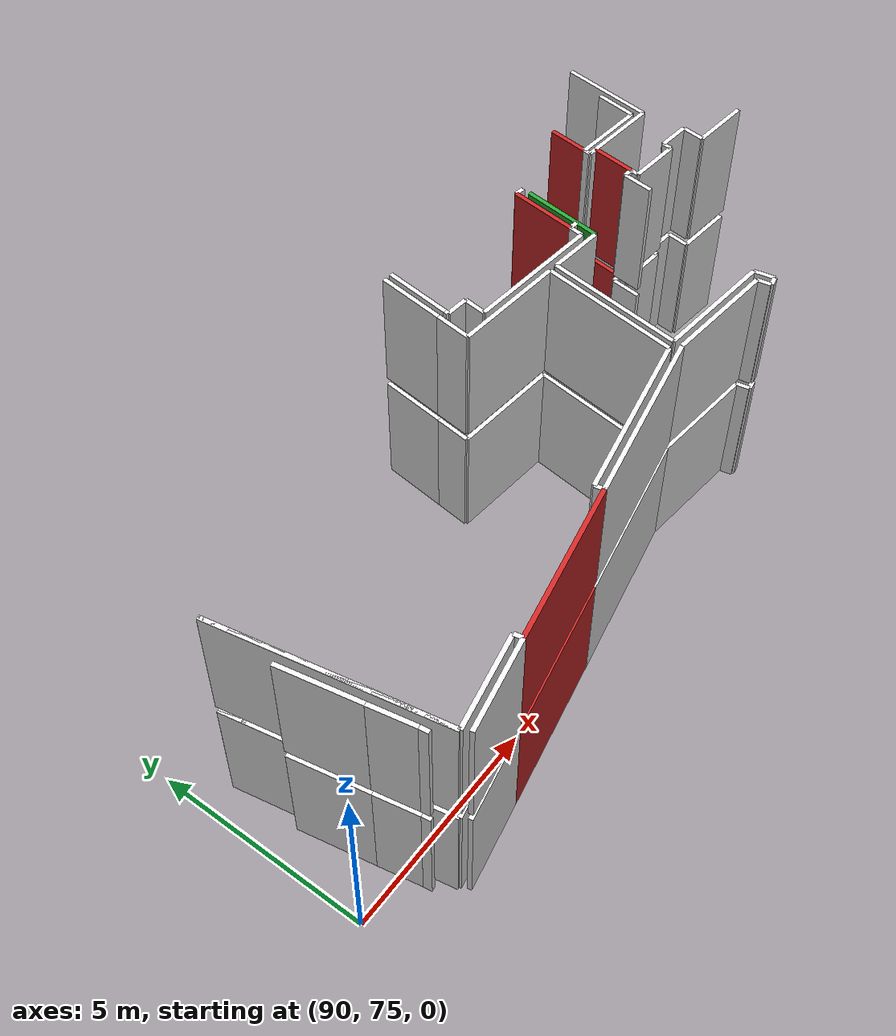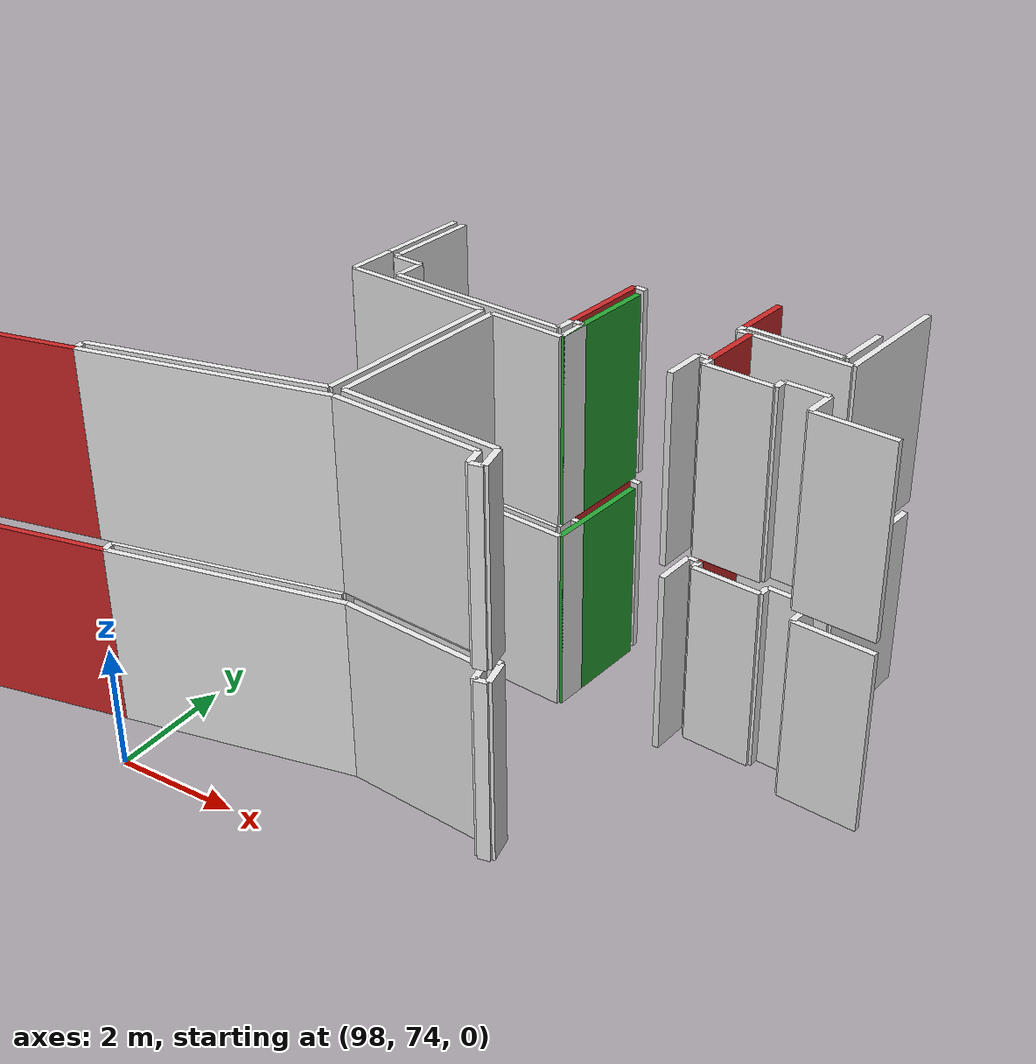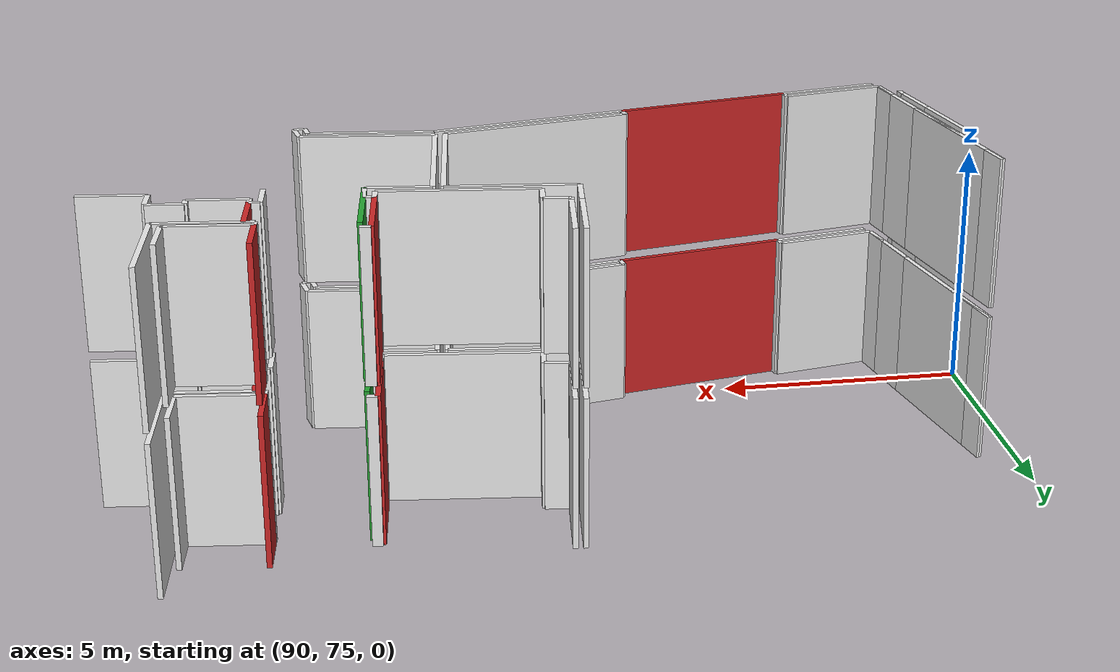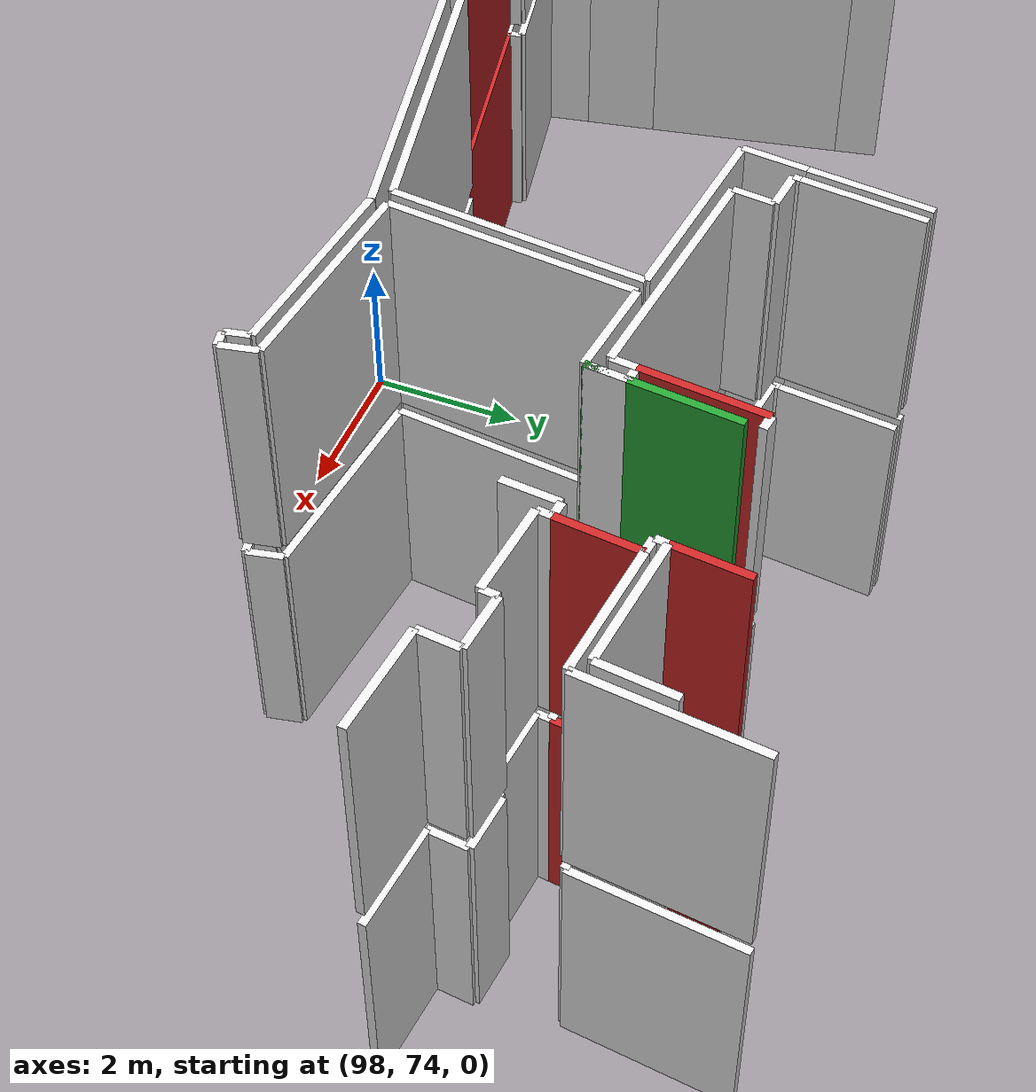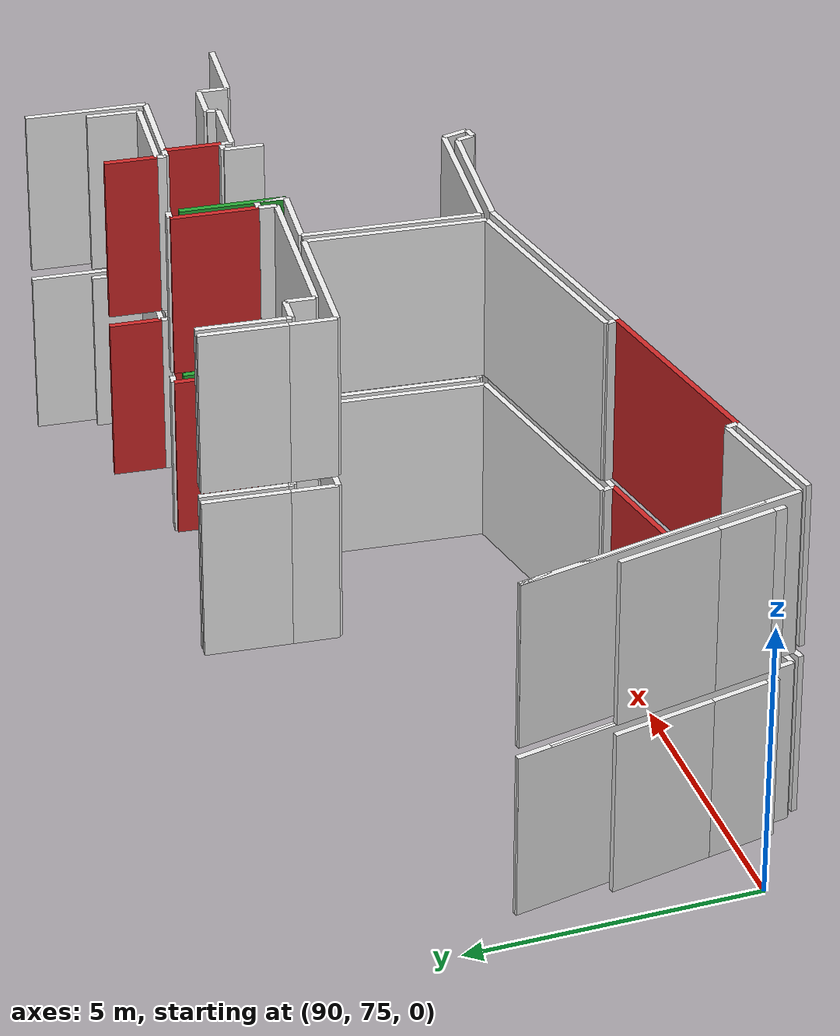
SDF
<sdf version="1.6">
 <world name="default">
  <model name="wall_104.7_79.7_0.0">
   <static>true</static>
   <pose>104.70999999999185 79.65999999991618 1.5 0 0 -1.6724851785951633</pose>
   <link name="link">
    <visual name="visual">
     <geometry><box><size>0.9850888284669952 0.1 3</size></box></geometry>
     <material>
      <script><uri>file://media/materials/scripts/gazebo.material</uri><name>Gazebo/Red</name></script>
     </material>
    </visual>
   </link>
  </model>
  <model name="wall_102.5_80.0_0.0">
   <static>true</static>
   <pose>102.52499999999418 79.9550000000745 1.5 0 0 -1.6711294309773623</pose>
   <link name="link">
    <visual name="visual">
     <geometry><box><size>1.4975313020620318 0.1 3</size></box></geometry>
     <material>
      <script><uri>file://media/materials/scripts/gazebo.material</uri><name>Gazebo/Red</name></script>
     </material>
    </visual>
   </link>
  </model>
  <model name="wall_102.7_79.6_0.0">
   <static>true</static>
   <pose>102.69000000006054 79.59000000008382 1.5 0 0 1.4711276742268928</pose>
   <link name="link">
    <visual name="visual">
     <geometry><box><size>1.808977612096451 0.1 3</size></box></geometry>
     <material>
      <script><uri>file://media/materials/scripts/gazebo.material</uri><name>Gazebo/Green</name></script>
     </material>
    </visual>
   </link>
  </model>
  <model name="wall_104.6_80.8_0.0">
   <static>true</static>
   <pose>104.625 80.77000000001863 1.5 0 0 -1.6704649792092168</pose>
   <link name="link">
    <visual name="visual">
     <geometry><box><size>0.904488806268317 0.1 3</size></box></geometry>
     <material>
      <script><uri>file://media/materials/scripts/gazebo.material</uri><name>Gazebo/Red</name></script>
     </material>
    </visual>
   </link>
  </model>
  <model name="wall_95.5_74.5_0.0">
   <static>true</static>
   <pose>95.51500000001397 74.51000000000931 1.5 0 0 0.19351316121262999</pose>
   <link name="link">
    <visual name="visual">
     <geometry><box><size>3.5360005656156344 0.1 3</size></box></geometry>
     <material>
      <script><uri>file://media/materials/scripts/gazebo.material</uri><name>Gazebo/Red</name></script>
     </material>
    </visual>
   </link>
  </model>
  <model name="wall_106.5_81.0_0.0">
   <static>true</static>
   <pose>106.46499999999651 81.02000000001863 1.5 0 0 -1.672387129760109</pose>
   <link name="link">
    <visual name="visual">
     <geometry><box><size>2.070676217644975 0.1 3</size></box></geometry>
     <material>
      <script><uri>file://media/materials/scripts/gazebo.material</uri><name>Gazebo/White</name></script>
     </material>
    </visual>
   </link>
  </model>
  <model name="wall_105.6_80.1_0.0">
   <static>true</static>
   <pose>105.55999999999767 80.07000000006519 1.5 0 0 3.041924001293137</pose>
   <link name="link">
    <visual name="visual">
     <geometry><box><size>1.6079800993246671 0.1 3</size></box></geometry>
     <material>
      <script><uri>file://media/materials/scripts/gazebo.material</uri><name>Gazebo/White</name></script>
     </material>
    </visual>
   </link>
  </model>
  <model name="wall_104.6_79.1_0.0">
   <static>true</static>
   <pose>104.64999999999418 79.0800000000745 1.5 0 0 -1.6814535479332997</pose>
   <link name="link">
    <visual name="visual">
     <geometry><box><size>0.1811077024621769 0.1 3</size></box></geometry>
     <material>
      <script><uri>file://media/materials/scripts/gazebo.material</uri><name>Gazebo/White</name></script>
     </material>
    </visual>
   </link>
  </model>
  <model name="wall_105.2_78.9_0.0">
   <static>true</static>
   <pose>105.20000000001164 78.93500000005588 1.5 0 0 -0.09790030803535979</pose>
   <link name="link">
    <visual name="visual">
     <geometry><box><size>1.1253888217248873 0.1 3</size></box></geometry>
     <material>
      <script><uri>file://media/materials/scripts/gazebo.material</uri><name>Gazebo/White</name></script>
     </material>
    </visual>
   </link>
  </model>
  <model name="wall_105.8_79.0_0.0">
   <static>true</static>
   <pose>105.77000000001863 78.97999999998137 1.5 0 0 1.4711276743037347</pose>
   <link name="link">
    <visual name="visual">
     <geometry><box><size>0.20099751260961132 0.1 3</size></box></geometry>
     <material>
      <script><uri>file://media/materials/scripts/gazebo.material</uri><name>Gazebo/White</name></script>
     </material>
    </visual>
   </link>
  </model>
  <model name="wall_106.1_79.0_0.0">
   <static>true</static>
   <pose>106.13000000000466 79.0449999999255 1.5 0 0 -0.0996686529192806</pose>
   <link name="link">
    <visual name="visual">
     <geometry><box><size>0.7034912934617817 0.1 3</size></box></geometry>
     <material>
      <script><uri>file://media/materials/scripts/gazebo.material</uri><name>Gazebo/White</name></script>
     </material>
    </visual>
   </link>
  </model>
  <model name="wall_106.5_78.8_0.0">
   <static>true</static>
   <pose>106.4549999999872 78.75999999977648 1.5 0 0 -1.6704649792630062</pose>
   <link name="link">
    <visual name="visual">
     <geometry><box><size>0.5024937810548861 0.1 3</size></box></geometry>
     <material>
      <script><uri>file://media/materials/scripts/gazebo.material</uri><name>Gazebo/White</name></script>
     </material>
    </visual>
   </link>
  </model>
  <model name="wall_107.1_78.4_0.0">
   <static>true</static>
   <pose>107.07499999998254 78.44499999983236 1.5 0 0 -0.10043611196470777</pose>
   <link name="link">
    <visual name="visual">
     <geometry><box><size>1.2965338406369806 0.1 3</size></box></geometry>
     <material>
      <script><uri>file://media/materials/scripts/gazebo.material</uri><name>Gazebo/White</name></script>
     </material>
    </visual>
   </link>
  </model>
  <model name="wall_99.1_80.6_0.0">
   <static>true</static>
   <pose>99.08499999999185 80.59499999997206 1.5 0 0 -1.671129431008509</pose>
   <link name="link">
    <visual name="visual">
     <geometry><box><size>1.4975313015987124 0.1 3</size></box></geometry>
     <material>
      <script><uri>file://media/materials/scripts/gazebo.material</uri><name>Gazebo/White</name></script>
     </material>
    </visual>
   </link>
  </model>
  <model name="wall_99.0_79.8_0.0">
   <static>true</static>
   <pose>99.00500000000466 79.80499999993481 1.5 0 0 -1.6814535476848524</pose>
   <link name="link">
    <visual name="visual">
     <geometry><box><size>0.0905538516971156 0.1 3</size></box></geometry>
     <material>
      <script><uri>file://media/materials/scripts/gazebo.material</uri><name>Gazebo/White</name></script>
     </material>
    </visual>
   </link>
  </model>
  <model name="wall_99.2_79.7_0.0">
   <static>true</static>
   <pose>99.25 79.73499999986961 1.5 0 0 -0.0996686521223214</pose>
   <link name="link">
    <visual name="visual">
     <geometry><box><size>0.5024937810375105 0.1 3</size></box></geometry>
     <material>
      <script><uri>file://media/materials/scripts/gazebo.material</uri><name>Gazebo/White</name></script>
     </material>
    </visual>
   </link>
  </model>
  <model name="wall_99.5_79.5_0.0">
   <static>true</static>
   <pose>99.47500000000582 79.45999999996275 1.5 0 0 -1.6704649792630062</pose>
   <link name="link">
    <visual name="visual">
     <geometry><box><size>0.5024937810548861 0.1 3</size></box></geometry>
     <material>
      <script><uri>file://media/materials/scripts/gazebo.material</uri><name>Gazebo/White</name></script>
     </material>
    </visual>
   </link>
  </model>
  <model name="wall_100.9_79.1_0.0">
   <static>true</static>
   <pose>100.93499999999767 79.06000000005588 1.5 0 0 -0.10066865209668763</pose>
   <link name="link">
    <visual name="visual">
     <geometry><box><size>2.9851130631388623 0.1 3</size></box></geometry>
     <material>
      <script><uri>file://media/materials/scripts/gazebo.material</uri><name>Gazebo/White</name></script>
     </material>
    </visual>
   </link>
  </model>
  <model name="wall_102.4_79.1_0.0">
   <static>true</static>
   <pose>102.43499999999767 79.06000000005588 1.5 0 0 1.471127674150051</pose>
   <link name="link">
    <visual name="visual">
     <geometry><box><size>0.3014962684510667 0.1 3</size></box></geometry>
     <material>
      <script><uri>file://media/materials/scripts/gazebo.material</uri><name>Gazebo/White</name></script>
     </material>
    </visual>
   </link>
  </model>
  <model name="wall_102.6_78.9_0.0">
   <static>true</static>
   <pose>102.625 78.93999999994412 1.5 0 0 1.4711276742115245</pose>
   <link name="link">
    <visual name="visual">
     <geometry><box><size>0.502493781060678 0.1 3</size></box></geometry>
     <material>
      <script><uri>file://media/materials/scripts/gazebo.material</uri><name>Gazebo/White</name></script>
     </material>
    </visual>
   </link>
  </model>
  <model name="wall_102.6_79.2_0.0">
   <static>true</static>
   <pose>102.55000000001746 79.19999999995343 1.5 0 0 3.0419240010121844</pose>
   <link name="link">
    <visual name="visual">
     <geometry><box><size>0.20099751243585498 0.1 3</size></box></geometry>
     <material>
      <script><uri>file://media/materials/scripts/gazebo.material</uri><name>Gazebo/White</name></script>
     </material>
    </visual>
   </link>
  </model>
  <model name="wall_102.7_80.7_0.0">
   <static>true</static>
   <pose>102.69999999998254 80.68500000005588 1.5 0 0 -0.14888994887611873</pose>
   <link name="link">
    <visual name="visual">
     <geometry><box><size>0.20223748421176238 0.1 3</size></box></geometry>
     <material>
      <script><uri>file://media/materials/scripts/gazebo.material</uri><name>Gazebo/White</name></script>
     </material>
    </visual>
   </link>
  </model>
  <model name="wall_104.6_80.2_0.0">
   <static>true</static>
   <pose>104.57000000000698 80.24499999987893 1.5 0 0 -1.7033478592949163</pose>
   <link name="link">
    <visual name="visual">
     <geometry><box><size>0.15132745941436201 0.1 3</size></box></geometry>
     <material>
      <script><uri>file://media/materials/scripts/gazebo.material</uri><name>Gazebo/White</name></script>
     </material>
    </visual>
   </link>
  </model>
  <model name="wall_104.7_80.2_0.0">
   <static>true</static>
   <pose>104.66000000000349 80.15999999991618 1.5 0 0 -0.09966865257760905</pose>
   <link name="link">
    <visual name="visual">
     <geometry><box><size>0.20099751243585498 0.1 3</size></box></geometry>
     <material>
      <script><uri>file://media/materials/scripts/gazebo.material</uri><name>Gazebo/White</name></script>
     </material>
    </visual>
   </link>
  </model>
  <model name="wall_104.6_79.2_0.0">
   <static>true</static>
   <pose>104.55999999999767 79.17999999993481 1.5 0 0 3.0419240009833683</pose>
   <link name="link">
    <visual name="visual">
     <geometry><box><size>0.20099751237793617 0.1 3</size></box></geometry>
     <material>
      <script><uri>file://media/materials/scripts/gazebo.material</uri><name>Gazebo/White</name></script>
     </material>
    </visual>
   </link>
  </model>
  <model name="wall_104.4_78.8_0.0">
   <static>true</static>
   <pose>104.43000000002212 78.8499999998603 1.5 0 0 -1.6588037002976554</pose>
   <link name="link">
    <visual name="visual">
     <geometry><box><size>0.6826419268018251 0.1 3</size></box></geometry>
     <material>
      <script><uri>file://media/materials/scripts/gazebo.material</uri><name>Gazebo/White</name></script>
     </material>
    </visual>
   </link>
  </model>
  <model name="wall_102.0_78.8_0.0">
   <static>true</static>
   <pose>101.98999999999069 78.75499999988824 1.5 0 0 3.035435852165321</pose>
   <link name="link">
    <visual name="visual">
     <geometry><box><size>1.2269066793781709 0.1 3</size></box></geometry>
     <material>
      <script><uri>file://media/materials/scripts/gazebo.material</uri><name>Gazebo/White</name></script>
     </material>
    </visual>
   </link>
  </model>
  <model name="wall_101.2_77.3_0.0">
   <static>true</static>
   <pose>101.22500000000582 77.31499999994412 1.5 0 0 -1.6734245234307366</pose>
   <link name="link">
    <visual name="visual">
     <geometry><box><size>3.0259213470698443 0.1 3</size></box></geometry>
     <material>
      <script><uri>file://media/materials/scripts/gazebo.material</uri><name>Gazebo/White</name></script>
     </material>
    </visual>
   </link>
  </model>
  <model name="wall_102.4_75.7_0.0">
   <static>true</static>
   <pose>102.36499999999069 75.67999999993481 1.5 0 0 -0.10005091556329442</pose>
   <link name="link">
    <visual name="visual">
     <geometry><box><size>2.6030174797640266 0.1 3</size></box></geometry>
     <material>
      <script><uri>file://media/materials/scripts/gazebo.material</uri><name>Gazebo/White</name></script>
     </material>
    </visual>
   </link>
  </model>
  <model name="wall_103.7_75.3_0.0">
   <static>true</static>
   <pose>103.7049999999872 75.32999999984168 1.5 0 0 -1.3690339823938056</pose>
   <link name="link">
    <visual name="visual">
     <geometry><box><size>0.44911023140809897 0.1 3</size></box></geometry>
     <material>
      <script><uri>file://media/materials/scripts/gazebo.material</uri><name>Gazebo/White</name></script>
     </material>
    </visual>
   </link>
  </model>
  <model name="wall_106.2_80.6_0.0">
   <static>true</static>
   <pose>106.22000000000116 80.61000000010245 1.5 0 0 -1.6814535480184818</pose>
   <link name="link">
    <visual name="visual">
     <geometry><box><size>0.9055385137250358 0.1 3</size></box></geometry>
     <material>
      <script><uri>file://media/materials/scripts/gazebo.material</uri><name>Gazebo/White</name></script>
     </material>
    </visual>
   </link>
  </model>
  <model name="wall_105.4_80.2_0.0">
   <static>true</static>
   <pose>105.375 80.23999999999069 1.5 0 0 3.041301336367988</pose>
   <link name="link">
    <visual name="visual">
     <geometry><box><size>1.598030037200495 0.1 3</size></box></geometry>
     <material>
      <script><uri>file://media/materials/scripts/gazebo.material</uri><name>Gazebo/White</name></script>
     </material>
    </visual>
   </link>
  </model>
  <model name="wall_91.4_74.4_0.0">
   <static>true</static>
   <pose>91.36499999999069 74.42999999993481 1.5 0 0 1.7196862747459547</pose>
   <link name="link">
    <visual name="visual">
     <geometry><box><size>0.2022374838894058 0.1 3</size></box></geometry>
     <material>
      <script><uri>file://media/materials/scripts/gazebo.material</uri><name>Gazebo/White</name></script>
     </material>
    </visual>
   </link>
  </model>
  <model name="wall_91.2_75.0_0.0">
   <static>true</static>
   <pose>91.25 75.0199999997858 1.5 0 0 1.7721134351276446</pose>
   <link name="link">
    <visual name="visual">
     <geometry><box><size>1.0001999799764374 0.1 3</size></box></geometry>
     <material>
      <script><uri>file://media/materials/scripts/gazebo.material</uri><name>Gazebo/White</name></script>
     </material>
    </visual>
   </link>
  </model>
  <model name="wall_91.0_76.4_0.0">
   <static>true</static>
   <pose>90.97500000000582 76.38499999977648 1.5 0 0 1.7681918866639668</pose>
   <link name="link">
    <visual name="visual">
     <geometry><box><size>1.784656829764324 0.1 3</size></box></geometry>
     <material>
      <script><uri>file://media/materials/scripts/gazebo.material</uri><name>Gazebo/White</name></script>
     </material>
    </visual>
   </link>
  </model>
  <model name="wall_92.8_74.0_0.0">
   <static>true</static>
   <pose>92.79000000000815 73.9749999998603 1.5 0 0 0.19448011627470685</pose>
   <link name="link">
    <visual name="visual">
     <geometry><box><size>2.0180436071250893 0.1 3</size></box></geometry>
     <material>
      <script><uri>file://media/materials/scripts/gazebo.material</uri><name>Gazebo/White</name></script>
     </material>
    </visual>
   </link>
  </model>
  <model name="wall_99.2_75.2_0.0">
   <static>true</static>
   <pose>99.16000000000349 75.22999999998137 1.5 0 0 0.19638851078826064</pose>
   <link name="link">
    <visual name="visual">
     <geometry><box><size>3.8948684187933256 0.1 3</size></box></geometry>
     <material>
      <script><uri>file://media/materials/scripts/gazebo.material</uri><name>Gazebo/White</name></script>
     </material>
    </visual>
   </link>
  </model>
  <model name="wall_102.3_75.5_0.0">
   <static>true</static>
   <pose>102.27999999999884 75.48999999999069 1.5 0 0 -0.09885032196984292</pose>
   <link name="link">
    <visual name="visual">
     <geometry><box><size>2.431871707102348 0.1 3</size></box></geometry>
     <material>
      <script><uri>file://media/materials/scripts/gazebo.material</uri><name>Gazebo/White</name></script>
     </material>
    </visual>
   </link>
  </model>
  <model name="wall_103.5_75.2_0.0">
   <static>true</static>
   <pose>103.51999999998952 75.21999999997206 1.5 0 0 -1.3734007671315789</pose>
   <link name="link">
    <visual name="visual">
     <geometry><box><size>0.30594117108908153 0.1 3</size></box></geometry>
     <material>
      <script><uri>file://media/materials/scripts/gazebo.material</uri><name>Gazebo/White</name></script>
     </material>
    </visual>
   </link>
  </model>
  <model name="wall_103.6_75.1_0.0">
   <static>true</static>
   <pose>103.64999999999418 75.08999999985099 1.5 0 0 0.19739556001778746</pose>
   <link name="link">
    <visual name="visual">
     <geometry><box><size>0.20396078056243275 0.1 3</size></box></geometry>
     <material>
      <script><uri>file://media/materials/scripts/gazebo.material</uri><name>Gazebo/White</name></script>
     </material>
    </visual>
   </link>
  </model>
  <model name="wall_98.9_80.6_0.0">
   <static>true</static>
   <pose>98.89499999998952 80.61499999999069 1.5 0 0 -1.671129431008509</pose>
   <link name="link">
    <visual name="visual">
     <geometry><box><size>1.4975313015987124 0.1 3</size></box></geometry>
     <material>
      <script><uri>file://media/materials/scripts/gazebo.material</uri><name>Gazebo/White</name></script>
     </material>
    </visual>
   </link>
  </model>
  <model name="wall_98.8_79.5_0.0">
   <static>true</static>
   <pose>98.77999999999884 79.47500000009313 1.5 0 0 -1.6717181114778847</pose>
   <link name="link">
    <visual name="visual">
     <geometry><box><size>0.794040301282918 0.1 3</size></box></geometry>
     <material>
      <script><uri>file://media/materials/scripts/gazebo.material</uri><name>Gazebo/White</name></script>
     </material>
    </visual>
   </link>
  </model>
  <model name="wall_100.0_79.0_0.0">
   <static>true</static>
   <pose>99.96499999999651 78.95999999996275 1.5 0 0 -0.09764763673931534</pose>
   <link name="link">
    <visual name="visual">
     <geometry><box><size>2.461727036079413 0.1 3</size></box></geometry>
     <material>
      <script><uri>file://media/materials/scripts/gazebo.material</uri><name>Gazebo/White</name></script>
     </material>
    </visual>
   </link>
  </model>
  <model name="wall_101.0_77.3_0.0">
   <static>true</static>
   <pose>101.02999999999884 77.30999999982305 1.5 0 0 -1.6749927620578993</pose>
   <link name="link">
    <visual name="visual">
     <geometry><box><size>3.0766865294251953 0.1 3</size></box></geometry>
     <material>
      <script><uri>file://media/materials/scripts/gazebo.material</uri><name>Gazebo/White</name></script>
     </material>
    </visual>
   </link>
  </model>
  <model name="wall_99.0_75.4_0.0">
   <static>true</static>
   <pose>99.04000000000815 75.41499999980442 1.5 0 0 -2.9447225797697154</pose>
   <link name="link">
    <visual name="visual">
     <geometry><box><size>3.7320905669323365 0.1 3</size></box></geometry>
     <material>
      <script><uri>file://media/materials/scripts/gazebo.material</uri><name>Gazebo/White</name></script>
     </material>
    </visual>
   </link>
  </model>
  <model name="wall_97.2_74.9_0.0">
   <static>true</static>
   <pose>97.23000000001048 74.94999999995343 1.5 0 0 -1.373400766777109</pose>
   <link name="link">
    <visual name="visual">
     <geometry><box><size>0.20396078026563078 0.1 3</size></box></geometry>
     <material>
      <script><uri>file://media/materials/scripts/gazebo.material</uri><name>Gazebo/White</name></script>
     </material>
    </visual>
   </link>
  </model>
  <model name="wall_93.8_74.3_0.0">
   <static>true</static>
   <pose>93.76000000000931 74.26499999989755 1.5 0 0 1.7782925534771346</pose>
   <link name="link">
    <visual name="visual">
     <geometry><box><size>0.19416487834246976 0.1 3</size></box></geometry>
     <material>
      <script><uri>file://media/materials/scripts/gazebo.material</uri><name>Gazebo/White</name></script>
     </material>
    </visual>
   </link>
  </model>
  <model name="wall_92.7_74.2_0.0">
   <static>true</static>
   <pose>92.72500000000582 74.15999999991618 1.5 0 0 -2.947040688012496</pose>
   <link name="link">
    <visual name="visual">
     <geometry><box><size>2.0690335907864346 0.1 3</size></box></geometry>
     <material>
      <script><uri>file://media/materials/scripts/gazebo.material</uri><name>Gazebo/White</name></script>
     </material>
    </visual>
   </link>
  </model>
  <model name="wall_91.7_74.3_0.0">
   <static>true</static>
   <pose>91.65000000002328 74.27000000001863 1.5 0 0 1.761980786351043</pose>
   <link name="link">
    <visual name="visual">
     <geometry><box><size>0.6315061362627153 0.1 3</size></box></geometry>
     <material>
      <script><uri>file://media/materials/scripts/gazebo.material</uri><name>Gazebo/White</name></script>
     </material>
    </visual>
   </link>
  </model>
  <model name="wall_91.5_75.1_0.0">
   <static>true</static>
   <pose>91.49500000002445 75.07000000006519 1.5 0 0 1.7622980452703567</pose>
   <link name="link">
    <visual name="visual">
     <geometry><box><size>0.9982484660465935 0.1 3</size></box></geometry>
     <material>
      <script><uri>file://media/materials/scripts/gazebo.material</uri><name>Gazebo/White</name></script>
     </material>
    </visual>
   </link>
  </model>
  <model name="wall_91.1_76.9_0.0">
   <static>true</static>
   <pose>91.125 76.92500000004657 1.5 0 0 1.7696003364353865</pose>
   <link name="link">
    <visual name="visual">
     <geometry><box><size>2.7848518811508667 0.1 3</size></box></geometry>
     <material>
      <script><uri>file://media/materials/scripts/gazebo.material</uri><name>Gazebo/White</name></script>
     </material>
    </visual>
   </link>
  </model>
  <model name="wall_90.8_78.6_0.0">
   <static>true</static>
   <pose>90.78999999997905 78.58499999996275 1.5 0 0 1.7714492041565322</pose>
   <link name="link">
    <visual name="visual">
     <geometry><box><size>0.6020797287926647 0.1 3</size></box></geometry>
     <material>
      <script><uri>file://media/materials/scripts/gazebo.material</uri><name>Gazebo/White</name></script>
     </material>
    </visual>
   </link>
  </model>
  <model name="wall_91.2_76.4_0.0">
   <static>true</static>
   <pose>91.22000000000116 76.4199999999255 1.5 0 0 -1.3741826276038303</pose>
   <link name="link">
    <visual name="visual">
     <geometry><box><size>5.016652270124415 0.1 3</size></box></geometry>
     <material>
      <script><uri>file://media/materials/scripts/gazebo.material</uri><name>Gazebo/White</name></script>
     </material>
    </visual>
   </link>
  </model>
  <model name="wall_104.7_79.7_3.2">
   <static>true</static>
   <pose>104.70999999999185 79.65999999991618 4.7 0 0 -1.6724851785951633</pose>
   <link name="link">
    <visual name="visual">
     <geometry><box><size>0.9850888284669952 0.1 3</size></box></geometry>
     <material>
      <script><uri>file://media/materials/scripts/gazebo.material</uri><name>Gazebo/Red</name></script>
     </material>
    </visual>
   </link>
  </model>
  <model name="wall_102.5_80.0_3.2">
   <static>true</static>
   <pose>102.52499999999418 79.9550000000745 4.7 0 0 -1.6711294309773623</pose>
   <link name="link">
    <visual name="visual">
     <geometry><box><size>1.4975313020620318 0.1 3</size></box></geometry>
     <material>
      <script><uri>file://media/materials/scripts/gazebo.material</uri><name>Gazebo/Red</name></script>
     </material>
    </visual>
   </link>
  </model>
  <model name="wall_102.7_79.6_3.2">
   <static>true</static>
   <pose>102.69000000006054 79.59000000008382 4.7 0 0 1.4711276742268928</pose>
   <link name="link">
    <visual name="visual">
     <geometry><box><size>1.808977612096451 0.1 3</size></box></geometry>
     <material>
      <script><uri>file://media/materials/scripts/gazebo.material</uri><name>Gazebo/Green</name></script>
     </material>
    </visual>
   </link>
  </model>
  <model name="wall_104.6_80.8_3.2">
   <static>true</static>
   <pose>104.625 80.77000000001863 4.7 0 0 -1.6704649792092168</pose>
   <link name="link">
    <visual name="visual">
     <geometry><box><size>0.904488806268317 0.1 3</size></box></geometry>
     <material>
      <script><uri>file://media/materials/scripts/gazebo.material</uri><name>Gazebo/Red</name></script>
     </material>
    </visual>
   </link>
  </model>
  <model name="wall_95.5_74.5_3.2">
   <static>true</static>
   <pose>95.51500000001397 74.51000000000931 4.7 0 0 0.19351316121262999</pose>
   <link name="link">
    <visual name="visual">
     <geometry><box><size>3.5360005656156344 0.1 3</size></box></geometry>
     <material>
      <script><uri>file://media/materials/scripts/gazebo.material</uri><name>Gazebo/Red</name></script>
     </material>
    </visual>
   </link>
  </model>
  <model name="wall_106.5_81.0_3.2">
   <static>true</static>
   <pose>106.46499999999651 81.02000000001863 4.7 0 0 -1.672387129760109</pose>
   <link name="link">
    <visual name="visual">
     <geometry><box><size>2.070676217644975 0.1 3</size></box></geometry>
     <material>
      <script><uri>file://media/materials/scripts/gazebo.material</uri><name>Gazebo/White</name></script>
     </material>
    </visual>
   </link>
  </model>
  <model name="wall_105.6_80.1_3.2">
   <static>true</static>
   <pose>105.55999999999767 80.07000000006519 4.7 0 0 3.041924001293137</pose>
   <link name="link">
    <visual name="visual">
     <geometry><box><size>1.6079800993246671 0.1 3</size></box></geometry>
     <material>
      <script><uri>file://media/materials/scripts/gazebo.material</uri><name>Gazebo/White</name></script>
     </material>
    </visual>
   </link>
  </model>
  <model name="wall_104.6_79.1_3.2">
   <static>true</static>
   <pose>104.64999999999418 79.0800000000745 4.7 0 0 -1.6814535479332997</pose>
   <link name="link">
    <visual name="visual">
     <geometry><box><size>0.1811077024621769 0.1 3</size></box></geometry>
     <material>
      <script><uri>file://media/materials/scripts/gazebo.material</uri><name>Gazebo/White</name></script>
     </material>
    </visual>
   </link>
  </model>
  <model name="wall_105.2_78.9_3.2">
   <static>true</static>
   <pose>105.20000000001164 78.93500000005588 4.7 0 0 -0.09790030803535979</pose>
   <link name="link">
    <visual name="visual">
     <geometry><box><size>1.1253888217248873 0.1 3</size></box></geometry>
     <material>
      <script><uri>file://media/materials/scripts/gazebo.material</uri><name>Gazebo/White</name></script>
     </material>
    </visual>
   </link>
  </model>
  <model name="wall_105.8_79.0_3.2">
   <static>true</static>
   <pose>105.77000000001863 78.97999999998137 4.7 0 0 1.4711276743037347</pose>
   <link name="link">
    <visual name="visual">
     <geometry><box><size>0.20099751260961132 0.1 3</size></box></geometry>
     <material>
      <script><uri>file://media/materials/scripts/gazebo.material</uri><name>Gazebo/White</name></script>
     </material>
    </visual>
   </link>
  </model>
  <model name="wall_106.1_79.0_3.2">
   <static>true</static>
   <pose>106.13000000000466 79.0449999999255 4.7 0 0 -0.0996686529192806</pose>
   <link name="link">
    <visual name="visual">
     <geometry><box><size>0.7034912934617817 0.1 3</size></box></geometry>
     <material>
      <script><uri>file://media/materials/scripts/gazebo.material</uri><name>Gazebo/White</name></script>
     </material>
    </visual>
   </link>
  </model>
  <model name="wall_106.5_78.8_3.2">
   <static>true</static>
   <pose>106.4549999999872 78.75999999977648 4.7 0 0 -1.6704649792630062</pose>
   <link name="link">
    <visual name="visual">
     <geometry><box><size>0.5024937810548861 0.1 3</size></box></geometry>
     <material>
      <script><uri>file://media/materials/scripts/gazebo.material</uri><name>Gazebo/White</name></script>
     </material>
    </visual>
   </link>
  </model>
  <model name="wall_107.1_78.4_3.2">
   <static>true</static>
   <pose>107.07499999998254 78.44499999983236 4.7 0 0 -0.10043611196470777</pose>
   <link name="link">
    <visual name="visual">
     <geometry><box><size>1.2965338406369806 0.1 3</size></box></geometry>
     <material>
      <script><uri>file://media/materials/scripts/gazebo.material</uri><name>Gazebo/White</name></script>
     </material>
    </visual>
   </link>
  </model>
  <model name="wall_99.1_80.6_3.2">
   <static>true</static>
   <pose>99.08499999999185 80.59499999997206 4.7 0 0 -1.671129431008509</pose>
   <link name="link">
    <visual name="visual">
     <geometry><box><size>1.4975313015987124 0.1 3</size></box></geometry>
     <material>
      <script><uri>file://media/materials/scripts/gazebo.material</uri><name>Gazebo/White</name></script>
     </material>
    </visual>
   </link>
  </model>
  <model name="wall_99.0_79.8_3.2">
   <static>true</static>
   <pose>99.00500000000466 79.80499999993481 4.7 0 0 -1.6814535476848524</pose>
   <link name="link">
    <visual name="visual">
     <geometry><box><size>0.0905538516971156 0.1 3</size></box></geometry>
     <material>
      <script><uri>file://media/materials/scripts/gazebo.material</uri><name>Gazebo/White</name></script>
     </material>
    </visual>
   </link>
  </model>
  <model name="wall_99.2_79.7_3.2">
   <static>true</static>
   <pose>99.25 79.73499999986961 4.7 0 0 -0.0996686521223214</pose>
   <link name="link">
    <visual name="visual">
     <geometry><box><size>0.5024937810375105 0.1 3</size></box></geometry>
     <material>
      <script><uri>file://media/materials/scripts/gazebo.material</uri><name>Gazebo/White</name></script>
     </material>
    </visual>
   </link>
  </model>
  <model name="wall_99.5_79.5_3.2">
   <static>true</static>
   <pose>99.47500000000582 79.45999999996275 4.7 0 0 -1.6704649792630062</pose>
   <link name="link">
    <visual name="visual">
     <geometry><box><size>0.5024937810548861 0.1 3</size></box></geometry>
     <material>
      <script><uri>file://media/materials/scripts/gazebo.material</uri><name>Gazebo/White</name></script>
     </material>
    </visual>
   </link>
  </model>
  <model name="wall_100.9_79.1_3.2">
   <static>true</static>
   <pose>100.93499999999767 79.06000000005588 4.7 0 0 -0.10066865209668763</pose>
   <link name="link">
    <visual name="visual">
     <geometry><box><size>2.9851130631388623 0.1 3</size></box></geometry>
     <material>
      <script><uri>file://media/materials/scripts/gazebo.material</uri><name>Gazebo/White</name></script>
     </material>
    </visual>
   </link>
  </model>
  <model name="wall_102.4_79.1_3.2">
   <static>true</static>
   <pose>102.43499999999767 79.06000000005588 4.7 0 0 1.471127674150051</pose>
   <link name="link">
    <visual name="visual">
     <geometry><box><size>0.3014962684510667 0.1 3</size></box></geometry>
     <material>
      <script><uri>file://media/materials/scripts/gazebo.material</uri><name>Gazebo/White</name></script>
     </material>
    </visual>
   </link>
  </model>
  <model name="wall_102.6_78.9_3.2">
   <static>true</static>
   <pose>102.625 78.93999999994412 4.7 0 0 1.4711276742115245</pose>
   <link name="link">
    <visual name="visual">
     <geometry><box><size>0.502493781060678 0.1 3</size></box></geometry>
     <material>
      <script><uri>file://media/materials/scripts/gazebo.material</uri><name>Gazebo/White</name></script>
     </material>
    </visual>
   </link>
  </model>
  <model name="wall_102.6_79.2_3.2">
   <static>true</static>
   <pose>102.55000000001746 79.19999999995343 4.7 0 0 3.0419240010121844</pose>
   <link name="link">
    <visual name="visual">
     <geometry><box><size>0.20099751243585498 0.1 3</size></box></geometry>
     <material>
      <script><uri>file://media/materials/scripts/gazebo.material</uri><name>Gazebo/White</name></script>
     </material>
    </visual>
   </link>
  </model>
  <model name="wall_102.7_80.7_3.2">
   <static>true</static>
   <pose>102.69999999998254 80.68500000005588 4.7 0 0 -0.14888994887611873</pose>
   <link name="link">
    <visual name="visual">
     <geometry><box><size>0.20223748421176238 0.1 3</size></box></geometry>
     <material>
      <script><uri>file://media/materials/scripts/gazebo.material</uri><name>Gazebo/White</name></script>
     </material>
    </visual>
   </link>
  </model>
  <model name="wall_104.6_80.2_3.2">
   <static>true</static>
   <pose>104.57000000000698 80.24499999987893 4.7 0 0 -1.7033478592949163</pose>
   <link name="link">
    <visual name="visual">
     <geometry><box><size>0.15132745941436201 0.1 3</size></box></geometry>
     <material>
      <script><uri>file://media/materials/scripts/gazebo.material</uri><name>Gazebo/White</name></script>
     </material>
    </visual>
   </link>
  </model>
  <model name="wall_104.7_80.2_3.2">
   <static>true</static>
   <pose>104.66000000000349 80.15999999991618 4.7 0 0 -0.09966865257760905</pose>
   <link name="link">
    <visual name="visual">
     <geometry><box><size>0.20099751243585498 0.1 3</size></box></geometry>
     <material>
      <script><uri>file://media/materials/scripts/gazebo.material</uri><name>Gazebo/White</name></script>
     </material>
    </visual>
   </link>
  </model>
  <model name="wall_104.6_79.2_3.2">
   <static>true</static>
   <pose>104.55999999999767 79.17999999993481 4.7 0 0 3.0419240009833683</pose>
   <link name="link">
    <visual name="visual">
     <geometry><box><size>0.20099751237793617 0.1 3</size></box></geometry>
     <material>
      <script><uri>file://media/materials/scripts/gazebo.material</uri><name>Gazebo/White</name></script>
     </material>
    </visual>
   </link>
  </model>
  <model name="wall_104.4_78.8_3.2">
   <static>true</static>
   <pose>104.43000000002212 78.8499999998603 4.7 0 0 -1.6588037002976554</pose>
   <link name="link">
    <visual name="visual">
     <geometry><box><size>0.6826419268018251 0.1 3</size></box></geometry>
     <material>
      <script><uri>file://media/materials/scripts/gazebo.material</uri><name>Gazebo/White</name></script>
     </material>
    </visual>
   </link>
  </model>
  <model name="wall_102.0_78.8_3.2">
   <static>true</static>
   <pose>101.98999999999069 78.75499999988824 4.7 0 0 3.035435852165321</pose>
   <link name="link">
    <visual name="visual">
     <geometry><box><size>1.2269066793781709 0.1 3</size></box></geometry>
     <material>
      <script><uri>file://media/materials/scripts/gazebo.material</uri><name>Gazebo/White</name></script>
     </material>
    </visual>
   </link>
  </model>
  <model name="wall_101.2_77.3_3.2">
   <static>true</static>
   <pose>101.22500000000582 77.31499999994412 4.7 0 0 -1.6734245234307366</pose>
   <link name="link">
    <visual name="visual">
     <geometry><box><size>3.0259213470698443 0.1 3</size></box></geometry>
     <material>
      <script><uri>file://media/materials/scripts/gazebo.material</uri><name>Gazebo/White</name></script>
     </material>
    </visual>
   </link>
  </model>
  <model name="wall_102.4_75.7_3.2">
   <static>true</static>
   <pose>102.36499999999069 75.67999999993481 4.7 0 0 -0.10005091556329442</pose>
   <link name="link">
    <visual name="visual">
     <geometry><box><size>2.6030174797640266 0.1 3</size></box></geometry>
     <material>
      <script><uri>file://media/materials/scripts/gazebo.material</uri><name>Gazebo/White</name></script>
     </material>
    </visual>
   </link>
  </model>
  <model name="wall_103.7_75.3_3.2">
   <static>true</static>
   <pose>103.7049999999872 75.32999999984168 4.7 0 0 -1.3690339823938056</pose>
   <link name="link">
    <visual name="visual">
     <geometry><box><size>0.44911023140809897 0.1 3</size></box></geometry>
     <material>
      <script><uri>file://media/materials/scripts/gazebo.material</uri><name>Gazebo/White</name></script>
     </material>
    </visual>
   </link>
  </model>
  <model name="wall_106.2_80.6_3.2">
   <static>true</static>
   <pose>106.22000000000116 80.61000000010245 4.7 0 0 -1.6814535480184818</pose>
   <link name="link">
    <visual name="visual">
     <geometry><box><size>0.9055385137250358 0.1 3</size></box></geometry>
     <material>
      <script><uri>file://media/materials/scripts/gazebo.material</uri><name>Gazebo/White</name></script>
     </material>
    </visual>
   </link>
  </model>
  <model name="wall_105.4_80.2_3.2">
   <static>true</static>
   <pose>105.375 80.23999999999069 4.7 0 0 3.041301336367988</pose>
   <link name="link">
    <visual name="visual">
     <geometry><box><size>1.598030037200495 0.1 3</size></box></geometry>
     <material>
      <script><uri>file://media/materials/scripts/gazebo.material</uri><name>Gazebo/White</name></script>
     </material>
    </visual>
   </link>
  </model>
  <model name="wall_91.4_74.4_3.2">
   <static>true</static>
   <pose>91.36499999999069 74.42999999993481 4.7 0 0 1.7196862747459547</pose>
   <link name="link">
    <visual name="visual">
     <geometry><box><size>0.2022374838894058 0.1 3</size></box></geometry>
     <material>
      <script><uri>file://media/materials/scripts/gazebo.material</uri><name>Gazebo/White</name></script>
     </material>
    </visual>
   </link>
  </model>
  <model name="wall_91.2_75.0_3.2">
   <static>true</static>
   <pose>91.25 75.0199999997858 4.7 0 0 1.7721134351276446</pose>
   <link name="link">
    <visual name="visual">
     <geometry><box><size>1.0001999799764374 0.1 3</size></box></geometry>
     <material>
      <script><uri>file://media/materials/scripts/gazebo.material</uri><name>Gazebo/White</name></script>
     </material>
    </visual>
   </link>
  </model>
  <model name="wall_91.0_76.4_3.2">
   <static>true</static>
   <pose>90.97500000000582 76.38499999977648 4.7 0 0 1.7681918866639668</pose>
   <link name="link">
    <visual name="visual">
     <geometry><box><size>1.784656829764324 0.1 3</size></box></geometry>
     <material>
      <script><uri>file://media/materials/scripts/gazebo.material</uri><name>Gazebo/White</name></script>
     </material>
    </visual>
   </link>
  </model>
  <model name="wall_92.8_74.0_3.2">
   <static>true</static>
   <pose>92.79000000000815 73.9749999998603 4.7 0 0 0.19448011627470685</pose>
   <link name="link">
    <visual name="visual">
     <geometry><box><size>2.0180436071250893 0.1 3</size></box></geometry>
     <material>
      <script><uri>file://media/materials/scripts/gazebo.material</uri><name>Gazebo/White</name></script>
     </material>
    </visual>
   </link>
  </model>
  <model name="wall_99.2_75.2_3.2">
   <static>true</static>
   <pose>99.16000000000349 75.22999999998137 4.7 0 0 0.19638851078826064</pose>
   <link name="link">
    <visual name="visual">
     <geometry><box><size>3.8948684187933256 0.1 3</size></box></geometry>
     <material>
      <script><uri>file://media/materials/scripts/gazebo.material</uri><name>Gazebo/White</name></script>
     </material>
    </visual>
   </link>
  </model>
  <model name="wall_102.3_75.5_3.2">
   <static>true</static>
   <pose>102.27999999999884 75.48999999999069 4.7 0 0 -0.09885032196984292</pose>
   <link name="link">
    <visual name="visual">
     <geometry><box><size>2.431871707102348 0.1 3</size></box></geometry>
     <material>
      <script><uri>file://media/materials/scripts/gazebo.material</uri><name>Gazebo/White</name></script>
     </material>
    </visual>
   </link>
  </model>
  <model name="wall_103.5_75.2_3.2">
   <static>true</static>
   <pose>103.51999999998952 75.21999999997206 4.7 0 0 -1.3734007671315789</pose>
   <link name="link">
    <visual name="visual">
     <geometry><box><size>0.30594117108908153 0.1 3</size></box></geometry>
     <material>
      <script><uri>file://media/materials/scripts/gazebo.material</uri><name>Gazebo/White</name></script>
     </material>
    </visual>
   </link>
  </model>
  <model name="wall_103.6_75.1_3.2">
   <static>true</static>
   <pose>103.64999999999418 75.08999999985099 4.7 0 0 0.19739556001778746</pose>
   <link name="link">
    <visual name="visual">
     <geometry><box><size>0.20396078056243275 0.1 3</size></box></geometry>
     <material>
      <script><uri>file://media/materials/scripts/gazebo.material</uri><name>Gazebo/White</name></script>
     </material>
    </visual>
   </link>
  </model>
  <model name="wall_98.9_80.6_3.2">
   <static>true</static>
   <pose>98.89499999998952 80.61499999999069 4.7 0 0 -1.671129431008509</pose>
   <link name="link">
    <visual name="visual">
     <geometry><box><size>1.4975313015987124 0.1 3</size></box></geometry>
     <material>
      <script><uri>file://media/materials/scripts/gazebo.material</uri><name>Gazebo/White</name></script>
     </material>
    </visual>
   </link>
  </model>
  <model name="wall_98.8_79.5_3.2">
   <static>true</static>
   <pose>98.77999999999884 79.47500000009313 4.7 0 0 -1.6717181114778847</pose>
   <link name="link">
    <visual name="visual">
     <geometry><box><size>0.794040301282918 0.1 3</size></box></geometry>
     <material>
      <script><uri>file://media/materials/scripts/gazebo.material</uri><name>Gazebo/White</name></script>
     </material>
    </visual>
   </link>
  </model>
  <model name="wall_100.0_79.0_3.2">
   <static>true</static>
   <pose>99.96499999999651 78.95999999996275 4.7 0 0 -0.09764763673931534</pose>
   <link name="link">
    <visual name="visual">
     <geometry><box><size>2.461727036079413 0.1 3</size></box></geometry>
     <material>
      <script><uri>file://media/materials/scripts/gazebo.material</uri><name>Gazebo/White</name></script>
     </material>
    </visual>
   </link>
  </model>
  <model name="wall_101.0_77.3_3.2">
   <static>true</static>
   <pose>101.02999999999884 77.30999999982305 4.7 0 0 -1.6749927620578993</pose>
   <link name="link">
    <visual name="visual">
     <geometry><box><size>3.0766865294251953 0.1 3</size></box></geometry>
     <material>
      <script><uri>file://media/materials/scripts/gazebo.material</uri><name>Gazebo/White</name></script>
     </material>
    </visual>
   </link>
  </model>
  <model name="wall_99.0_75.4_3.2">
   <static>true</static>
   <pose>99.04000000000815 75.41499999980442 4.7 0 0 -2.9447225797697154</pose>
   <link name="link">
    <visual name="visual">
     <geometry><box><size>3.7320905669323365 0.1 3</size></box></geometry>
     <material>
      <script><uri>file://media/materials/scripts/gazebo.material</uri><name>Gazebo/White</name></script>
     </material>
    </visual>
   </link>
  </model>
  <model name="wall_97.2_74.9_3.2">
   <static>true</static>
   <pose>97.23000000001048 74.94999999995343 4.7 0 0 -1.373400766777109</pose>
   <link name="link">
    <visual name="visual">
     <geometry><box><size>0.20396078026563078 0.1 3</size></box></geometry>
     <material>
      <script><uri>file://media/materials/scripts/gazebo.material</uri><name>Gazebo/White</name></script>
     </material>
    </visual>
   </link>
  </model>
  <model name="wall_93.8_74.3_3.2">
   <static>true</static>
   <pose>93.76000000000931 74.26499999989755 4.7 0 0 1.7782925534771346</pose>
   <link name="link">
    <visual name="visual">
     <geometry><box><size>0.19416487834246976 0.1 3</size></box></geometry>
     <material>
      <script><uri>file://media/materials/scripts/gazebo.material</uri><name>Gazebo/White</name></script>
     </material>
    </visual>
   </link>
  </model>
  <model name="wall_92.7_74.2_3.2">
   <static>true</static>
   <pose>92.72500000000582 74.15999999991618 4.7 0 0 -2.947040688012496</pose>
   <link name="link">
    <visual name="visual">
     <geometry><box><size>2.0690335907864346 0.1 3</size></box></geometry>
     <material>
      <script><uri>file://media/materials/scripts/gazebo.material</uri><name>Gazebo/White</name></script>
     </material>
    </visual>
   </link>
  </model>
  <model name="wall_91.7_74.3_3.2">
   <static>true</static>
   <pose>91.65000000002328 74.27000000001863 4.7 0 0 1.761980786351043</pose>
   <link name="link">
    <visual name="visual">
     <geometry><box><size>0.6315061362627153 0.1 3</size></box></geometry>
     <material>
      <script><uri>file://media/materials/scripts/gazebo.material</uri><name>Gazebo/White</name></script>
     </material>
    </visual>
   </link>
  </model>
  <model name="wall_91.5_75.1_3.2">
   <static>true</static>
   <pose>91.49500000002445 75.07000000006519 4.7 0 0 1.7622980452703567</pose>
   <link name="link">
    <visual name="visual">
     <geometry><box><size>0.9982484660465935 0.1 3</size></box></geometry>
     <material>
      <script><uri>file://media/materials/scripts/gazebo.material</uri><name>Gazebo/White</name></script>
     </material>
    </visual>
   </link>
  </model>
  <model name="wall_91.1_76.9_3.2">
   <static>true</static>
   <pose>91.125 76.92500000004657 4.7 0 0 1.7696003364353865</pose>
   <link name="link">
    <visual name="visual">
     <geometry><box><size>2.7848518811508667 0.1 3</size></box></geometry>
     <material>
      <script><uri>file://media/materials/scripts/gazebo.material</uri><name>Gazebo/White</name></script>
     </material>
    </visual>
   </link>
  </model>
  <model name="wall_90.8_78.6_3.2">
   <static>true</static>
   <pose>90.78999999997905 78.58499999996275 4.7 0 0 1.7714492041565322</pose>
   <link name="link">
    <visual name="visual">
     <geometry><box><size>0.6020797287926647 0.1 3</size></box></geometry>
     <material>
      <script><uri>file://media/materials/scripts/gazebo.material</uri><name>Gazebo/White</name></script>
     </material>
    </visual>
   </link>
  </model>
  <model name="wall_91.2_76.4_3.2">
   <static>true</static>
   <pose>91.22000000000116 76.4199999999255 4.7 0 0 -1.3741826276038303</pose>
   <link name="link">
    <visual name="visual">
     <geometry><box><size>5.016652270124415 0.1 3</size></box></geometry>
     <material>
      <script><uri>file://media/materials/scripts/gazebo.material</uri><name>Gazebo/White</name></script>
     </material>
    </visual>
   </link>
  </model>
 </world>
</sdf>
